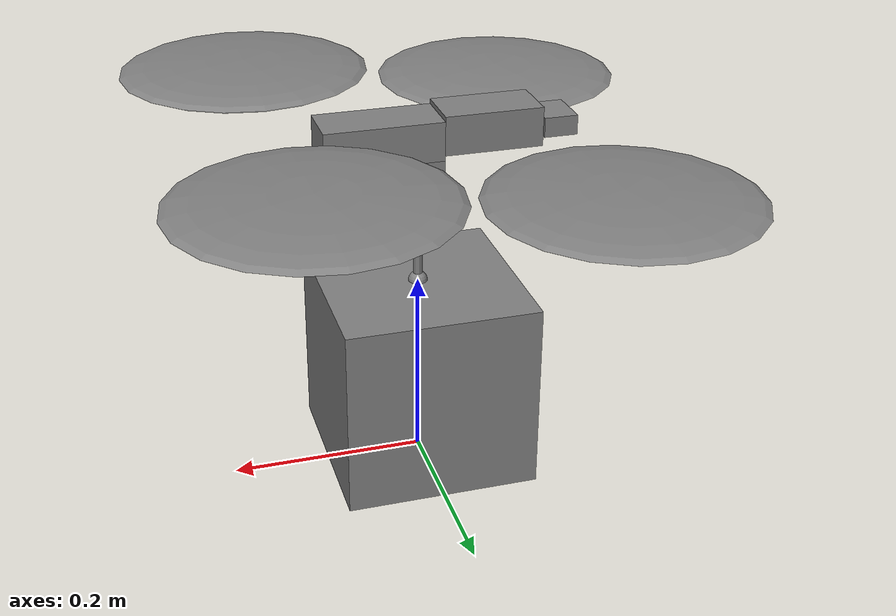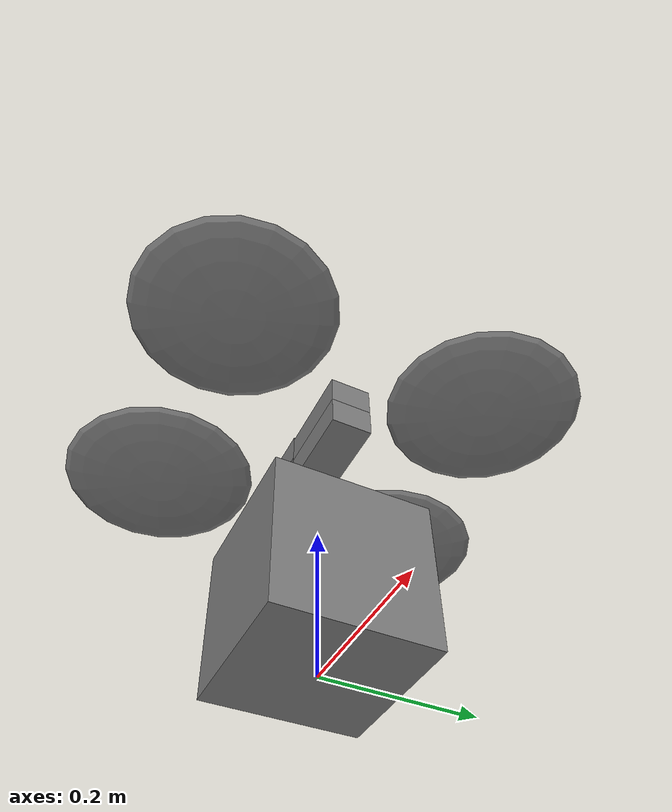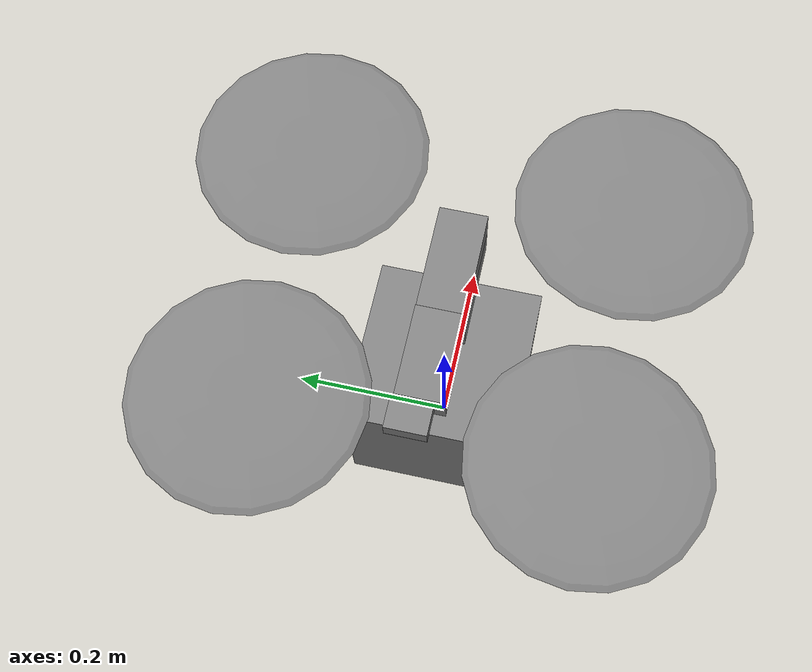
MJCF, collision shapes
<mujoco model="Skydio X2">
  <compiler autolimits="true" assetdir="assets"/>

  <option timestep="0.01" density="1.225" viscosity="1.8e-5"/>

  <default>
    <default class="x2">
      <geom mass="0"/>
      <motor ctrlrange="0 13"/>
      <mesh scale="0.01 0.01 0.01"/>
      <default class="visual">
        <geom group="2" type="mesh" contype="0" conaffinity="0"/>
      </default>
      <default class="collision">
        <geom group="3" type="box"/>
        <default class="rotor">
          <geom type="ellipsoid" size=".13 .13 .01"/>
        </default>
      </default>
      <site group="5"/>
    </default>
  </default>

  <asset>
    <texture type="2d" file="X2_lowpoly_texture_SpinningProps_1024.png"/>
    <material name="phong3SG" texture="X2_lowpoly_texture_SpinningProps_1024"/>
    <material name="invisible" rgba="0 0 0 0"/>

    <mesh class="x2" file="X2_lowpoly.obj"/>
  </asset>

  <worldbody>
    <light name="spotlight" mode="targetbodycom" target="x2" pos="0 -1 2"/>
    <body name="x2" pos="0 0 0.3" childclass="x2">
      <freejoint/>
      <camera name="track" pos="-1 0 .5" xyaxes="0 -1 0 1 0 2" mode="trackcom"/>
      <site name="imu" pos="0 0 .02"/>
      <geom material="phong3SG" mesh="X2_lowpoly" class="visual" quat="0 0 1 1"/>
      <geom class="collision" size=".06 .027 .02" pos=".04 0 .02"/>
      <geom class="collision" size=".06 .027 .02" pos=".04 0 .06"/>
      <geom class="collision" size=".05 .027 .02" pos="-.07 0 .065"/>
      <geom class="collision" size=".023 .017 .01" pos="-.137 .008 .065" quat="1 0 0 1"/>
      <geom name="rotor1" class="rotor" pos="-.14 -.18 .05" mass=".25"/>
      <geom name="rotor2" class="rotor" pos="-.14 .18 .05" mass=".25"/>
      <geom name="rotor3" class="rotor" pos=".14 .18 .08" mass=".25"/>
      <geom name="rotor4" class="rotor" pos=".14 -.18 .08" mass=".25"/>
      <geom size=".16 .04 .02" pos="0 0 0.02" type="ellipsoid" mass=".325" class="visual" material="invisible"/>
      <site name="thrust1" pos="-.14 -.18 .05"/>
      <site name="thrust2" pos="-.14 .18 .05"/>
      <site name="thrust3" pos=".14 .18 .08"/>
      <site name="thrust4" pos=".14 -.18 .08"/>
      <site name="package1" pos="0 0 0" size="0.01"/>
    </body>
    <body name="box" pos="0 0 0.1">
      <joint type="free"/>
      <geom size="0.1 0.1 0.1" type="box" mass="1.0" />
      <site name="package2" pos="0 0 0.1" size="0.01"/>
    </body>
  </worldbody>

  <tendon>
    <spatial limited="true" range="0 0.6" width="0.005">
      <site site="package1"/>
      <site site="package2"/>
    </spatial>
  </tendon>

  <actuator>
    <motor class="x2" name="thrust1" site="thrust1" gear="0 0 1 0 0 -.0201"/>
    <motor class="x2" name="thrust2" site="thrust2" gear="0 0 1 0 0  .0201"/>
    <motor class="x2" name="thrust3" site="thrust3" gear="0 0 1 0 0 -.0201"/>
    <motor class="x2" name="thrust4" site="thrust4" gear="0 0 1 0 0  .0201"/>
  </actuator>

  <sensor>
    <gyro name="body_gyro" site="imu"/>
    <accelerometer name="body_linacc" site="imu"/>
    <framequat name="body_quat" objtype="site" objname="imu"/>
  </sensor>

  <keyframe>
    <key name="hover" qpos="0 0 .3 1 0 0 0" ctrl="3.2495625 3.2495625 3.2495625 3.2495625"/>
  </keyframe>
</mujoco>
